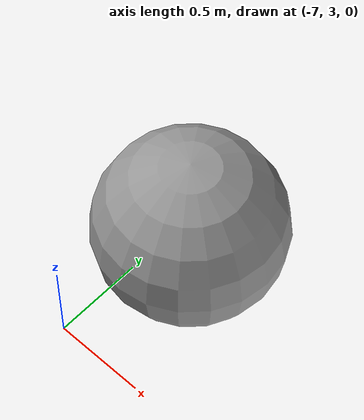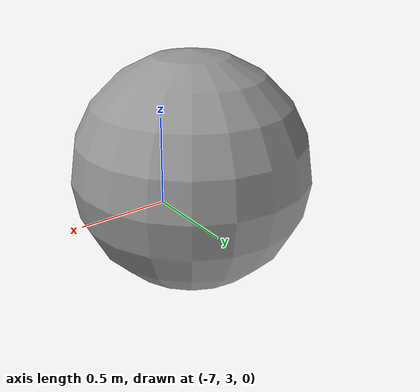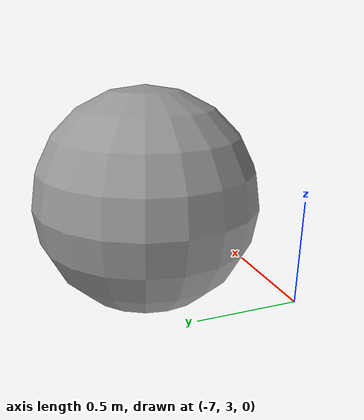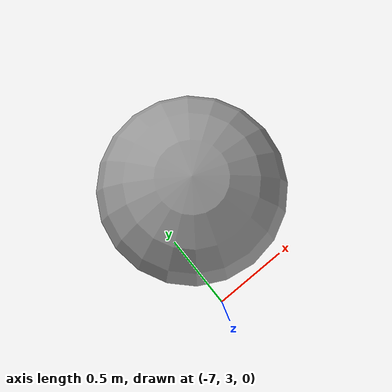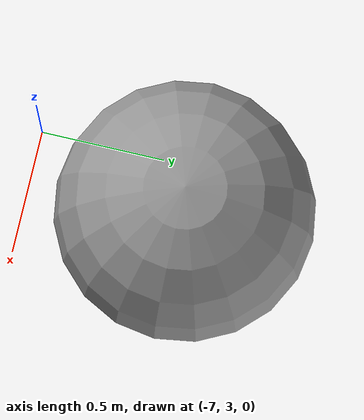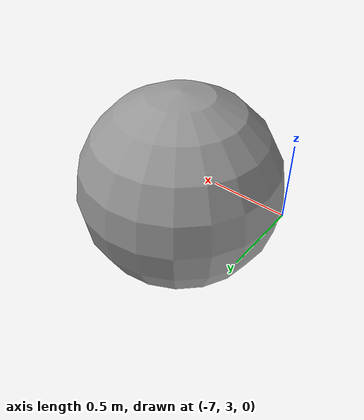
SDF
<sdf version="1.7">
 <world name="default">
  <gravity>0 0 -9.8</gravity>
  <magnetic_field>6e-06 2.3e-05 -4.2e-05</magnetic_field>
  <atmosphere type="adiabatic"/>
  <physics type="ode">
   <max_step_size>0.001</max_step_size>
   <real_time_factor>1</real_time_factor>
   <real_time_update_rate>1000</real_time_update_rate>
  </physics>
  <scene><ambient>0.4 0.4 0.4 1</ambient><background>0.7 0.7 0.7 1</background><shadows>1</shadows></scene>
  <spherical_coordinates>
   <surface_model>EARTH_WGS84</surface_model>
   <latitude_deg>0</latitude_deg>
   <longitude_deg>0</longitude_deg>
   <elevation>0</elevation>
   <heading_deg>0</heading_deg>
  </spherical_coordinates>
  <model name="Bread_Cutter"><pose>0 0 1 0 -0 0</pose></model>
  <model name="unit_sphere">
   <pose>-6.7287 3.64779 0.5 0 -0 0</pose>
   <link name="link">
    <inertial>
     <mass>1</mass>
     <inertia><ixx>0.1</ixx><ixy>0</ixy><ixz>0</ixz><iyy>0.1</iyy><iyz>0</iyz><izz>0.1</izz></inertia>
    </inertial>
    <collision name="collision"><geometry><sphere><radius>0.5</radius></sphere></geometry></collision>
    <visual name="visual">
     <geometry><sphere><radius>0.5</radius></sphere></geometry>
     <material>
      <script><name>Gazebo/Grey</name><uri>file://media/materials/scripts/gazebo.material</uri></script>
     </material>
    </visual>
   </link>
  </model>
 </world>
</sdf>
